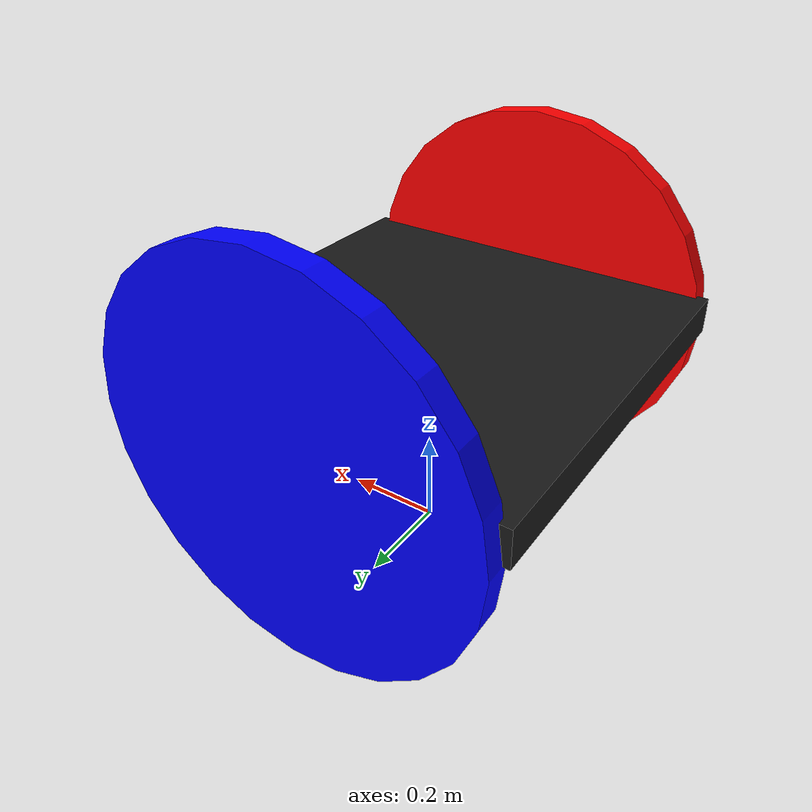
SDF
<?xml version="1.0" ?>
<sdf version="1.7">
  <model name="diff_drive_robot">
    <static>false</static>

    <!-- CHASSIS LINK -->
    <link name="chassis">
      <pose>0 0 0.4375 0 0 0</pose>
      <inertial>
        <mass>15.0</mass>
        <inertia>
          <ixx>0.5</ixx><ixy>0.0</ixy><ixz>0.0</ixz>
          <iyy>0.5</iyy><iyz>0.0</iyz>
          <izz>0.5</izz>
        </inertia>
      </inertial>

      <collision name="chassis_collision">
        <geometry>
          <box><size>0.825 0.825 0.075</size></box>
        </geometry>
        <surface>
          <friction>
            <ode>
              <mu>0.5</mu>
              <mu2>0.5</mu2>
            </ode>
          </friction>
          <contact>
            <ode>
              <kp>1e6</kp>
              <kd>100</kd>
            </ode>
          </contact>
        </surface>
      </collision>

      <visual name="chassis_visual">
        <geometry>
          <box><size>0.825 0.825 0.075</size></box>
        </geometry>
        <material>
          <ambient>0.1 0.1 0.1 1</ambient>
          <diffuse>0.1 0.1 0.1 1</diffuse>
          <specular>0.3 0.3 0.3 1</specular>
        </material>
      </visual>
    </link>

    <!-- LIDAR DOME LINK -->
    <link name="lidar_dome">
      <pose>0.3 0 0.475 0 0 0</pose>
      <inertial>
        <mass>0.1</mass>
        <inertia>
          <ixx>1e-5</ixx><ixy>0.0</ixy><ixz>0.0</ixz>
          <iyy>1e-5</iyy><iyz>0.0</iyz>
          <izz>1e-5</izz>
        </inertia>
      </inertial>

      <collision name="lidar_dome_collision">
        <geometry>
          <sphere><radius>0.03125</radius></sphere>
        </geometry>
      </collision>

      <visual name="lidar_dome_visual">
        <geometry>
          <sphere><radius>0.03125</radius></sphere>
        </geometry>
        <material>
          <ambient>0.0 1.0 0.0 1</ambient>
          <diffuse>0.0 1.0 0.0 1</diffuse>
          <specular>0.5 0.5 0.5 1</specular>
        </material>
      </visual>
    </link>

    <!-- LEFT WHEEL LINK -->
    <link name="left_wheel">
      <pose>0 0.425 0.4 0 0 0</pose>
      <inertial>
        <mass>2.0</mass>
        <inertia>
          <ixx>0.04</ixx><ixy>0</ixy><ixz>0</ixz>
          <iyy>0.04</iyy><iyz>0</iyz>
          <izz>0.04</izz>
        </inertia>
      </inertial>

      <collision name="left_wheel_collision">
        <pose>0 0 0 1.5707 0 0</pose>
        <geometry>
          <cylinder>
            <radius>0.4</radius>
            <length>0.05</length>
          </cylinder>
        </geometry>
        <surface>
          <friction>
            <ode>
              <mu>1.0</mu>
              <mu2>1.0</mu2>
              <slip1>0.0</slip1>
              <slip2>0.0</slip2>
            </ode>
          </friction>
          <contact>
            <ode>
              <kp>1e6</kp>
              <kd>100</kd>
              <min_depth>0.001</min_depth>
            </ode>
          </contact>
        </surface>
      </collision>

      <visual name="left_wheel_visual">
        <pose>0 0 0 1.5707 0 0</pose>
        <geometry>
          <cylinder>
            <radius>0.4</radius>
            <length>0.05</length>
          </cylinder>
        </geometry>
        <material>
          <ambient>0.0 0.0 1.0 1</ambient>
          <diffuse>0.0 0.0 1.0 1</diffuse>
          <specular>0.3 0.3 0.3 1</specular>
        </material>
      </visual>
    </link>

    <!-- RIGHT WHEEL LINK -->
    <link name="right_wheel">
      <pose>0 -0.425 0.4 0 0 0</pose>
      <inertial>
        <mass>2.0</mass>
        <inertia>
          <ixx>0.04</ixx><ixy>0</ixy><ixz>0</ixz>
          <iyy>0.04</iyy><iyz>0</iyz>
          <izz>0.04</izz>
        </inertia>
      </inertial>

      <collision name="right_wheel_collision">
        <pose>0 0 0 1.5707 0 0</pose>
        <geometry>
          <cylinder>
            <radius>0.4</radius>
            <length>0.05</length>
          </cylinder>
        </geometry>
        <surface>
          <friction>
            <ode>
              <mu>1.0</mu>
              <mu2>1.0</mu2>
              <slip1>0.0</slip1>
              <slip2>0.0</slip2>
            </ode>
          </friction>
          <contact>
            <ode>
              <kp>1e6</kp>
              <kd>100</kd>
              <min_depth>0.001</min_depth>
            </ode>
          </contact>
        </surface>
      </collision>

      <visual name="right_wheel_visual">
        <pose>0 0 0 1.5707 0 0</pose>
        <geometry>
          <cylinder>
            <radius>0.4</radius>
            <length>0.05</length>
          </cylinder>
        </geometry>
        <material>
          <ambient>1.0 0.0 0.0 1</ambient>
          <diffuse>1.0 0.0 0.0 1</diffuse>
          <specular>0.3 0.3 0.3 1</specular>
        </material>
      </visual>
    </link>

    <!-- STABILIZER LINKS (Passive casters for stability) -->
    <link name="stabilizer_skid_front">
      <pose>0.35 0 0.02 0 0 0</pose>
      <inertial>
        <mass>0.001</mass>
        <inertia>
          <ixx>1e-6</ixx><ixy>0</ixy><ixz>0</ixz>
          <iyy>1e-6</iyy><iyz>0</iyz>
          <izz>1e-6</izz>
        </inertia>
      </inertial>

      <collision name="skid_collision_front">
        <geometry>
          <sphere><radius>0.02</radius></sphere>
        </geometry>
        <surface>
          <friction>
            <ode>
              <mu>0.01</mu>
              <mu2>0.01</mu2>
            </ode>
          </friction>
          <contact>
            <ode>
              <kp>1e6</kp>
              <kd>100</kd>
            </ode>
          </contact>
        </surface>
      </collision>
    </link>

    <link name="stabilizer_skid_rear">
      <pose>-0.35 0 0.02 0 0 0</pose>
      <inertial>
        <mass>0.001</mass>
        <inertia>
          <ixx>1e-6</ixx><ixy>0</ixy><ixz>0</ixz>
          <iyy>1e-6</iyy><iyz>0</iyz>
          <izz>1e-6</izz>
        </inertia>
      </inertial>

      <collision name="skid_collision_rear">
        <geometry>
          <sphere><radius>0.02</radius></sphere>
        </geometry>
        <surface>
          <friction>
            <ode>
              <mu>0.01</mu>
              <mu2>0.01</mu2>
            </ode>
          </friction>
          <contact>
            <ode>
              <kp>1e6</kp>
              <kd>100</kd>
            </ode>
          </contact>
        </surface>
      </collision>
    </link>

    <!-- JOINTS -->

    <joint name="lidar_dome_joint" type="fixed">
      <parent>chassis</parent>
      <child>lidar_dome</child>
    </joint>

    <joint name="left_wheel_joint" type="revolute">
      <parent>chassis</parent>
      <child>left_wheel</child>
      <axis>
        <xyz>0 1 0</xyz>
        <dynamics>
          <damping>0.1</damping>
          <friction>0.1</friction>
        </dynamics>
      </axis>
    </joint>

    <joint name="right_wheel_joint" type="revolute">
      <parent>chassis</parent>
      <child>right_wheel</child>
      <axis>
        <xyz>0 1 0</xyz>
        <dynamics>
          <damping>0.1</damping>
          <friction>0.1</friction>
        </dynamics>
      </axis>
    </joint>

    <joint name="skid_joint_front" type="fixed">
      <parent>chassis</parent>
      <child>stabilizer_skid_front</child>
    </joint>

    <joint name="skid_joint_rear" type="fixed">
      <parent>chassis</parent>
      <child>stabilizer_skid_rear</child>
    </joint>

    <!-- PLUGINS -->

    <!-- Gazebo ROS Differential Drive Plugin -->
    <plugin name="gazebo_ros_diff_drive" filename="libgazebo_ros_diff_drive.so">
      <ros>
        <namespace>/</namespace>
        <remapping>cmd_vel:=cmd_vel</remapping>
        <remapping>odom:=odom</remapping>
      </ros>

      <!-- Wheel joints -->
      <left_joint>left_wheel_joint</left_joint>
      <right_joint>right_wheel_joint</right_joint>

      <!-- Kinematics -->
      <wheel_separation>0.85</wheel_separation>
      <wheel_diameter>0.8</wheel_diameter>

      <!-- Limits -->
      <max_wheel_torque>20</max_wheel_torque>
      <max_wheel_acceleration>1.0</max_wheel_acceleration>

      <!-- Odometry -->
      <odometry_frame>odom</odometry_frame>
      <robot_base_frame>chassis</robot_base_frame>
      <publish_odom>true</publish_odom>
      <publish_odom_tf>true</publish_odom_tf>
      <publish_wheel_tf>false</publish_wheel_tf>

      <!-- Update rate -->
      <update_rate>50</update_rate>

      <!-- Odometry source (world or encoder) -->
      <odometry_source>world</odometry_source>
    </plugin>

    <!-- Gazebo ROS Joint State Publisher Plugin -->
    <plugin name="joint_state_publisher" filename="libgazebo_ros_joint_state_publisher.so">
      <ros>
        <namespace>/</namespace>
        <remapping>joint_states:=joint_states</remapping>
      </ros>
      <update_rate>50</update_rate>
      <joint_name>left_wheel_joint</joint_name>
      <joint_name>right_wheel_joint</joint_name>
    </plugin>
  </model>
</sdf>
